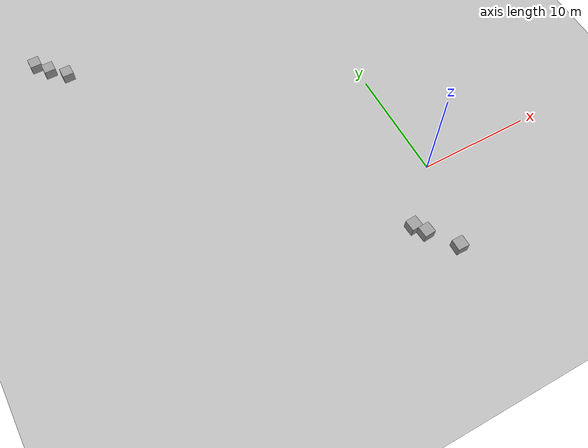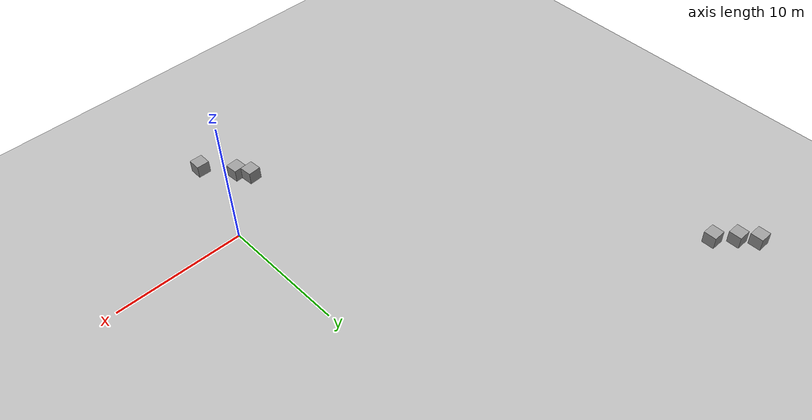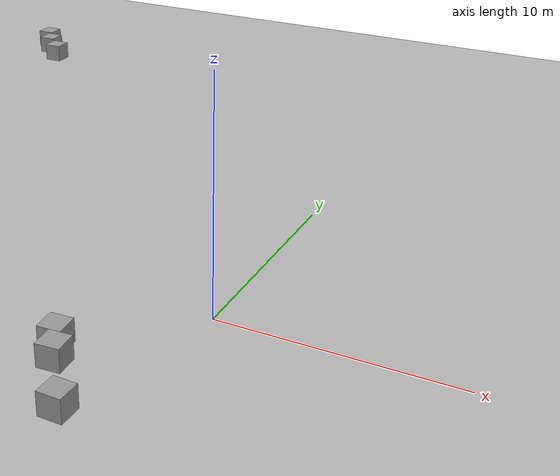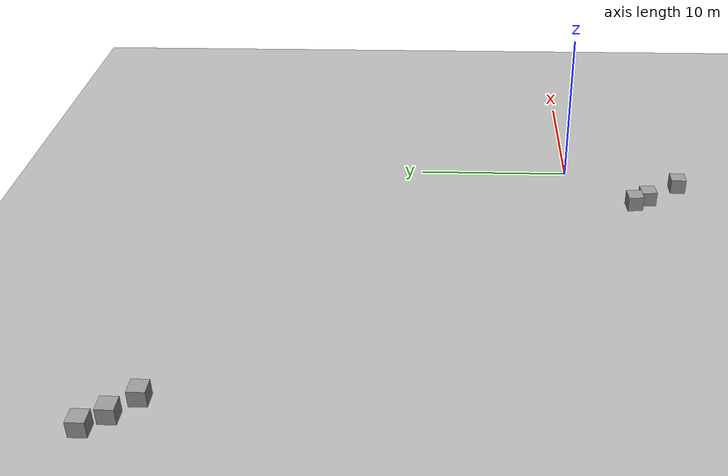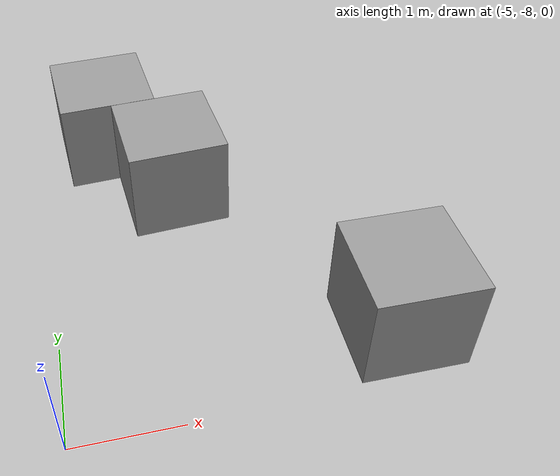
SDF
<sdf version="1.6">
 <world name="default">
  <light name="sun" type="directional">
   <pose>0 0 10 0 -0 0</pose>
   <diffuse>0.8 0.8 0.8 1</diffuse>
   <specular>0.2 0.2 0.2 1</specular>
   <attenuation>
    <range>1000</range>
    <constant>0.9</constant>
    <linear>0.01</linear>
    <quadratic>0.001</quadratic>
   </attenuation>
   <direction>0.5 0.1 -0.9</direction>
  </light>
  <scene><ambient>0.4 0.4 0.4 1</ambient><background>0.7 0.7 0.7 1</background><shadows>1</shadows></scene>
  <physics name="default_physics" default="0" type="ode">
   <max_step_size>0.01</max_step_size>
   <real_time_factor>1</real_time_factor>
   <real_time_update_rate>100</real_time_update_rate>
  </physics>
  <model name="ground_plane">
   <static>1</static>
   <link name="link">
    <collision name="collision">
     <geometry><plane><normal>0 0 1</normal><size>10000 10000</size></plane></geometry>
     <surface><friction><ode><mu>100</mu><mu2>50</mu2></ode></friction></surface>
    </collision>
    <visual name="visual">
     <cast_shadows>0</cast_shadows>
     <geometry><plane><normal>0 0 1</normal><size>0.1 0.1</size></plane></geometry>
     <material>
      <script><uri>file://media/materials/scripts/gazebo.material</uri><name>Gazebo/Grey</name></script>
     </material>
    </visual>
    <velocity_decay><linear>0</linear><angular>0</angular></velocity_decay>
   </link>
  </model>
  <gravity>0 0 -9.8</gravity>
  <magnetic_field>6e-06 2.3e-05 -4.2e-05</magnetic_field>
  <atmosphere type="adiabatic"/>
  <spherical_coordinates>
   <surface_model>EARTH_WGS84</surface_model>
   <latitude_deg>0</latitude_deg>
   <longitude_deg>0</longitude_deg>
   <elevation>0</elevation>
   <heading_deg>0</heading_deg>
  </spherical_coordinates>
  <audio><device>default</device></audio>
  <model name="robotcar_square">
   <static>1</static>
   <link name="link">
    <collision name="collision"><geometry><box><size>100 100 0.001</size></box></geometry></collision>
    <visual name="visual">
     <cast_shadows>0</cast_shadows>
     <geometry><box><size>100 100 0.001</size></box></geometry>
     <material>
      <script>
       <uri>model://robotcar_square/materials/scripts</uri>
       <uri>model://robotcar_square/materials/textures</uri>
       <name>RobotcarSquare/Image</name>
      </script>
     </material>
    </visual>
   </link>
   <pose>-0.091981 0.027304 0 0 -0 0</pose>
  </model>
  <model name="unit_box">
   <pose>-25.9067 26.0889 0.49957 0.0001 -0 -6e-06</pose>
   <link name="link">
    <inertial>
     <mass>1</mass>
     <inertia>
      <ixx>0.166667</ixx>
      <ixy>0</ixy>
      <ixz>0</ixz>
      <iyy>0.166667</iyy>
      <iyz>0</iyz>
      <izz>0.166667</izz>
     </inertia>
    </inertial>
    <collision name="collision"><geometry><box><size>1 1 1</size></box></geometry></collision>
    <visual name="visual">
     <geometry><box><size>1 1 1</size></box></geometry>
     <material>
      <script><name>Gazebo/Grey</name><uri>file://media/materials/scripts/gazebo.material</uri></script>
     </material>
    </visual>
   </link>
  </model>
  <model name="unit_box_0">
   <pose>-24.9821 24.9258 0.50017 -0.00066 -0 -5e-06</pose>
   <link name="link">
    <inertial>
     <mass>1</mass>
     <inertia>
      <ixx>0.166667</ixx>
      <ixy>0</ixy>
      <ixz>0</ixz>
      <iyy>0.166667</iyy>
      <iyz>0</iyz>
      <izz>0.166667</izz>
     </inertia>
    </inertial>
    <collision name="collision"><geometry><box><size>1 1 1</size></box></geometry></collision>
    <visual name="visual">
     <geometry><box><size>1 1 1</size></box></geometry>
     <material>
      <script><name>Gazebo/Grey</name><uri>file://media/materials/scripts/gazebo.material</uri></script>
     </material>
    </visual>
   </link>
  </model>
  <model name="unit_box_1">
   <pose>-23.6921 23.7193 0.49957 0.0001 -0 -5e-06</pose>
   <link name="link">
    <inertial>
     <mass>1</mass>
     <inertia>
      <ixx>0.166667</ixx>
      <ixy>0</ixy>
      <ixz>0</ixz>
      <iyy>0.166667</iyy>
      <iyz>0</iyz>
      <izz>0.166667</izz>
     </inertia>
    </inertial>
    <collision name="collision"><geometry><box><size>1 1 1</size></box></geometry></collision>
    <visual name="visual">
     <geometry><box><size>1 1 1</size></box></geometry>
     <material>
      <script><name>Gazebo/Grey</name><uri>file://media/materials/scripts/gazebo.material</uri></script>
     </material>
    </visual>
   </link>
  </model>
  <model name="unit_box_2">
   <pose>-1.94356 -7.44619 0.49957 0.0001 0 -0.007981</pose>
   <link name="link">
    <inertial>
     <mass>1</mass>
     <inertia>
      <ixx>0.166667</ixx>
      <ixy>0</ixy>
      <ixz>0</ixz>
      <iyy>0.166667</iyy>
      <iyz>0</iyz>
      <izz>0.166667</izz>
     </inertia>
    </inertial>
    <collision name="collision"><geometry><box><size>1 1 1</size></box></geometry></collision>
    <visual name="visual">
     <geometry><box><size>1 1 1</size></box></geometry>
     <material>
      <script><name>Gazebo/Grey</name><uri>file://media/materials/scripts/gazebo.material</uri></script>
     </material>
    </visual>
   </link>
  </model>
  <model name="unit_box_3">
   <pose>-4.26004 -4.21131 0.500298 0.000404 -1e-06 0.071435</pose>
   <link name="link">
    <inertial>
     <mass>1</mass>
     <inertia>
      <ixx>0.166667</ixx>
      <ixy>0</ixy>
      <ixz>0</ixz>
      <iyy>0.166667</iyy>
      <iyz>0</iyz>
      <izz>0.166667</izz>
     </inertia>
    </inertial>
    <collision name="collision"><geometry><box><size>1 1 1</size></box></geometry></collision>
    <visual name="visual">
     <geometry><box><size>1 1 1</size></box></geometry>
     <material>
      <script><name>Gazebo/Grey</name><uri>file://media/materials/scripts/gazebo.material</uri></script>
     </material>
    </visual>
   </link>
  </model>
  <model name="unit_box_4">
   <pose>-3.65786 -5.17251 0.500298 0.000404 -1e-06 0.071431</pose>
   <link name="link">
    <inertial>
     <mass>1</mass>
     <inertia>
      <ixx>0.166667</ixx>
      <ixy>0</ixy>
      <ixz>0</ixz>
      <iyy>0.166667</iyy>
      <iyz>0</iyz>
      <izz>0.166667</izz>
     </inertia>
    </inertial>
    <collision name="collision"><geometry><box><size>1 1 1</size></box></geometry></collision>
    <visual name="visual">
     <geometry><box><size>1 1 1</size></box></geometry>
     <material>
      <script><name>Gazebo/Grey</name><uri>file://media/materials/scripts/gazebo.material</uri></script>
     </material>
    </visual>
   </link>
  </model>
 </world>
</sdf>
